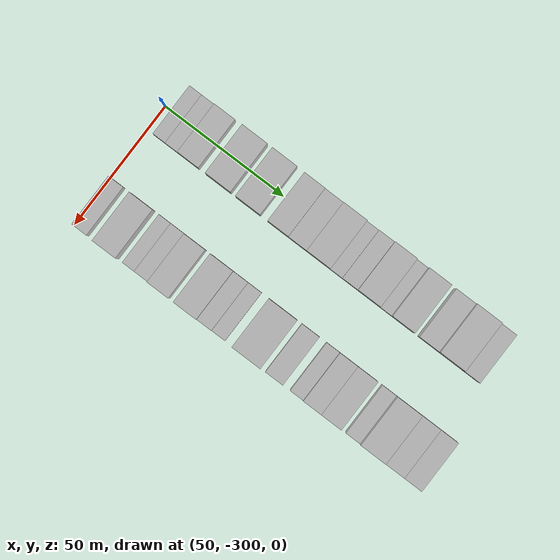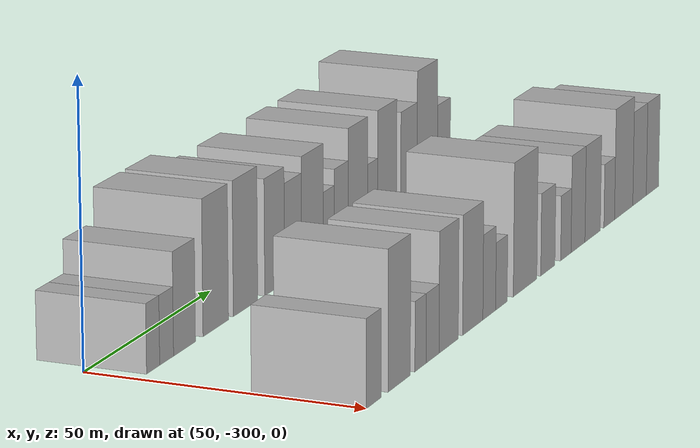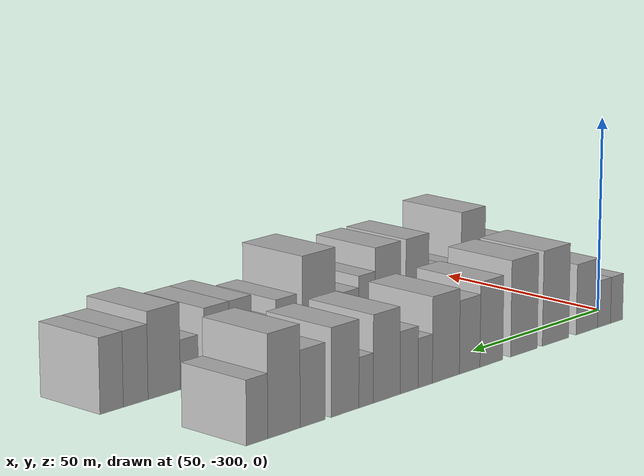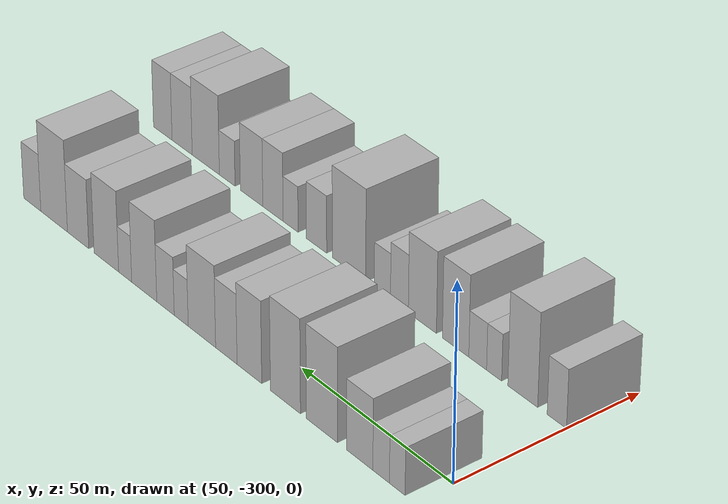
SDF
<sdf version="1.6">
 <world name="default">
  <model name="building_1">
   <static>1</static>
   <pose>50.0000 -294.4814 0 0.000000 0.000000 0.000000</pose>
   <link name="link">
    <pose>0 0 6.00 0 0 0</pose>
    <collision name="collision"><geometry><box><size>20.0000 5.0373 12.0000</size></box></geometry></collision>
    <visual name="visual">
     <cast_shadows>0</cast_shadows>
     <geometry><box><size>20.0000 5.0373 12.0000</size></box></geometry>
     <material>
      <script>
       <uri>model://HANNAS_wall/materials/scripts</uri>
       <uri>model://HANNAS_wall/materials/textures</uri>
       <name>vrc/HANNAS_wall</name>
      </script>
     </material>
    </visual>
   </link>
  </model>
  <model name="building_2">
   <static>1</static>
   <pose>50.0000 -289.2743 0 0.000000 0.000000 0.000000</pose>
   <link name="link">
    <pose>0 0 6.00 0 0 0</pose>
    <collision name="collision"><geometry><box><size>20.0000 5.3769 12.0000</size></box></geometry></collision>
    <visual name="visual">
     <cast_shadows>0</cast_shadows>
     <geometry><box><size>20.0000 5.3769 12.0000</size></box></geometry>
     <material>
      <script>
       <uri>model://HANNAS_wall/materials/scripts</uri>
       <uri>model://HANNAS_wall/materials/textures</uri>
       <name>vrc/HANNAS_wall</name>
      </script>
     </material>
    </visual>
   </link>
  </model>
  <model name="building_3">
   <static>1</static>
   <pose>50.0000 -282.2469 0 0.000000 0.000000 0.000000</pose>
   <link name="link">
    <pose>0 0 9.00 0 0 0</pose>
    <collision name="collision"><geometry><box><size>20.0000 8.6779 18.0000</size></box></geometry></collision>
    <visual name="visual">
     <cast_shadows>0</cast_shadows>
     <geometry><box><size>20.0000 8.6779 18.0000</size></box></geometry>
     <material>
      <script>
       <uri>model://HANNAS_wall/materials/scripts</uri>
       <uri>model://HANNAS_wall/materials/textures</uri>
       <name>vrc/HANNAS_wall</name>
      </script>
     </material>
    </visual>
   </link>
  </model>
  <model name="building_4">
   <static>1</static>
   <pose>50.0000 -269.6992 0 0.000000 0.000000 0.000000</pose>
   <link name="link">
    <pose>0 0 12.00 0 0 0</pose>
    <collision name="collision"><geometry><box><size>20.0000 10.4175 24.0000</size></box></geometry></collision>
    <visual name="visual">
     <cast_shadows>0</cast_shadows>
     <geometry><box><size>20.0000 10.4175 24.0000</size></box></geometry>
     <material>
      <script>
       <uri>model://HANNAS_wall/materials/scripts</uri>
       <uri>model://HANNAS_wall/materials/textures</uri>
       <name>vrc/HANNAS_wall</name>
      </script>
     </material>
    </visual>
   </link>
  </model>
  <model name="building_5">
   <static>1</static>
   <pose>50.0000 -257.3596 0 0.000000 0.000000 0.000000</pose>
   <link name="link">
    <pose>0 0 12.00 0 0 0</pose>
    <collision name="collision"><geometry><box><size>20.0000 10.2619 24.0000</size></box></geometry></collision>
    <visual name="visual">
     <cast_shadows>0</cast_shadows>
     <geometry><box><size>20.0000 10.2619 24.0000</size></box></geometry>
     <material>
      <script>
       <uri>model://HANNAS_wall/materials/scripts</uri>
       <uri>model://HANNAS_wall/materials/textures</uri>
       <name>vrc/HANNAS_wall</name>
      </script>
     </material>
    </visual>
   </link>
  </model>
  <model name="building_6">
   <static>1</static>
   <pose>50.0000 -244.9306 0 0.000000 0.000000 0.000000</pose>
   <link name="link">
    <pose>0 0 10.50 0 0 0</pose>
    <collision name="collision"><geometry><box><size>20.0000 8.5960 21.0000</size></box></geometry></collision>
    <visual name="visual">
     <cast_shadows>0</cast_shadows>
     <geometry><box><size>20.0000 8.5960 21.0000</size></box></geometry>
     <material>
      <script>
       <uri>model://HANNAS_wall/materials/scripts</uri>
       <uri>model://HANNAS_wall/materials/textures</uri>
       <name>vrc/HANNAS_wall</name>
      </script>
     </material>
    </visual>
   </link>
  </model>
  <model name="building_7">
   <static>1</static>
   <pose>50.0000 -236.8442 0 0.000000 0.000000 0.000000</pose>
   <link name="link">
    <pose>0 0 9.00 0 0 0</pose>
    <collision name="collision"><geometry><box><size>20.0000 7.5769 18.0000</size></box></geometry></collision>
    <visual name="visual">
     <cast_shadows>0</cast_shadows>
     <geometry><box><size>20.0000 7.5769 18.0000</size></box></geometry>
     <material>
      <script>
       <uri>model://HANNAS_wall/materials/scripts</uri>
       <uri>model://HANNAS_wall/materials/textures</uri>
       <name>vrc/HANNAS_wall</name>
      </script>
     </material>
    </visual>
   </link>
  </model>
  <model name="building_8">
   <static>1</static>
   <pose>50.0000 -228.1408 0 0.000000 0.000000 0.000000</pose>
   <link name="link">
    <pose>0 0 10.50 0 0 0</pose>
    <collision name="collision"><geometry><box><size>20.0000 9.8300 21.0000</size></box></geometry></collision>
    <visual name="visual">
     <cast_shadows>0</cast_shadows>
     <geometry><box><size>20.0000 9.8300 21.0000</size></box></geometry>
     <material>
      <script>
       <uri>model://HANNAS_wall/materials/scripts</uri>
       <uri>model://HANNAS_wall/materials/textures</uri>
       <name>vrc/HANNAS_wall</name>
      </script>
     </material>
    </visual>
   </link>
  </model>
  <model name="building_9">
   <static>1</static>
   <pose>50.0000 -220.6946 0 0.000000 0.000000 0.000000</pose>
   <link name="link">
    <pose>0 0 6.00 0 0 0</pose>
    <collision name="collision"><geometry><box><size>20.0000 5.0625 12.0000</size></box></geometry></collision>
    <visual name="visual">
     <cast_shadows>0</cast_shadows>
     <geometry><box><size>20.0000 5.0625 12.0000</size></box></geometry>
     <material>
      <script>
       <uri>model://HANNAS_wall/materials/scripts</uri>
       <uri>model://HANNAS_wall/materials/textures</uri>
       <name>vrc/HANNAS_wall</name>
      </script>
     </material>
    </visual>
   </link>
  </model>
  <model name="building_10">
   <static>1</static>
   <pose>50.0000 -214.9720 0 0.000000 0.000000 0.000000</pose>
   <link name="link">
    <pose>0 0 7.50 0 0 0</pose>
    <collision name="collision"><geometry><box><size>20.0000 6.3826 15.0000</size></box></geometry></collision>
    <visual name="visual">
     <cast_shadows>0</cast_shadows>
     <geometry><box><size>20.0000 6.3826 15.0000</size></box></geometry>
     <material>
      <script>
       <uri>model://HANNAS_wall/materials/scripts</uri>
       <uri>model://HANNAS_wall/materials/textures</uri>
       <name>vrc/HANNAS_wall</name>
      </script>
     </material>
    </visual>
   </link>
  </model>
  <model name="building_11">
   <static>1</static>
   <pose>50.0000 -207.1445 0 0.000000 0.000000 0.000000</pose>
   <link name="link">
    <pose>0 0 10.50 0 0 0</pose>
    <collision name="collision"><geometry><box><size>20.0000 9.2723 21.0000</size></box></geometry></collision>
    <visual name="visual">
     <cast_shadows>0</cast_shadows>
     <geometry><box><size>20.0000 9.2723 21.0000</size></box></geometry>
     <material>
      <script>
       <uri>model://HANNAS_wall/materials/scripts</uri>
       <uri>model://HANNAS_wall/materials/textures</uri>
       <name>vrc/HANNAS_wall</name>
      </script>
     </material>
    </visual>
   </link>
  </model>
  <model name="building_12">
   <static>1</static>
   <pose>50.0000 -200.0656 0 0.000000 0.000000 0.000000</pose>
   <link name="link">
    <pose>0 0 6.00 0 0 0</pose>
    <collision name="collision"><geometry><box><size>20.0000 4.8856 12.0000</size></box></geometry></collision>
    <visual name="visual">
     <cast_shadows>0</cast_shadows>
     <geometry><box><size>20.0000 4.8856 12.0000</size></box></geometry>
     <material>
      <script>
       <uri>model://HANNAS_wall/materials/scripts</uri>
       <uri>model://HANNAS_wall/materials/textures</uri>
       <name>vrc/HANNAS_wall</name>
      </script>
     </material>
    </visual>
   </link>
  </model>
  <model name="building_13">
   <static>1</static>
   <pose>50.0000 -192.9678 0 0.000000 0.000000 0.000000</pose>
   <link name="link">
    <pose>0 0 10.50 0 0 0</pose>
    <collision name="collision"><geometry><box><size>20.0000 9.3100 21.0000</size></box></geometry></collision>
    <visual name="visual">
     <cast_shadows>0</cast_shadows>
     <geometry><box><size>20.0000 9.3100 21.0000</size></box></geometry>
     <material>
      <script>
       <uri>model://HANNAS_wall/materials/scripts</uri>
       <uri>model://HANNAS_wall/materials/textures</uri>
       <name>vrc/HANNAS_wall</name>
      </script>
     </material>
    </visual>
   </link>
  </model>
  <model name="building_14">
   <static>1</static>
   <pose>50.0000 -182.2153 0 0.000000 0.000000 0.000000</pose>
   <link name="link">
    <pose>0 0 9.00 0 0 0</pose>
    <collision name="collision"><geometry><box><size>20.0000 8.1949 18.0000</size></box></geometry></collision>
    <visual name="visual">
     <cast_shadows>0</cast_shadows>
     <geometry><box><size>20.0000 8.1949 18.0000</size></box></geometry>
     <material>
      <script>
       <uri>model://HANNAS_wall/materials/scripts</uri>
       <uri>model://HANNAS_wall/materials/textures</uri>
       <name>vrc/HANNAS_wall</name>
      </script>
     </material>
    </visual>
   </link>
  </model>
  <model name="building_15">
   <static>1</static>
   <pose>50.0000 -172.9326 0 0.000000 0.000000 0.000000</pose>
   <link name="link">
    <pose>0 0 12.00 0 0 0</pose>
    <collision name="collision"><geometry><box><size>20.0000 10.3706 24.0000</size></box></geometry></collision>
    <visual name="visual">
     <cast_shadows>0</cast_shadows>
     <geometry><box><size>20.0000 10.3706 24.0000</size></box></geometry>
     <material>
      <script>
       <uri>model://HANNAS_wall/materials/scripts</uri>
       <uri>model://HANNAS_wall/materials/textures</uri>
       <name>vrc/HANNAS_wall</name>
      </script>
     </material>
    </visual>
   </link>
  </model>
  <model name="building_16">
   <static>1</static>
   <pose>50.0000 -164.3762 0 0.000000 0.000000 0.000000</pose>
   <link name="link">
    <pose>0 0 7.50 0 0 0</pose>
    <collision name="collision"><geometry><box><size>20.0000 6.7421 15.0000</size></box></geometry></collision>
    <visual name="visual">
     <cast_shadows>0</cast_shadows>
     <geometry><box><size>20.0000 6.7421 15.0000</size></box></geometry>
     <material>
      <script>
       <uri>model://HANNAS_wall/materials/scripts</uri>
       <uri>model://HANNAS_wall/materials/textures</uri>
       <name>vrc/HANNAS_wall</name>
      </script>
     </material>
    </visual>
   </link>
  </model>
  <model name="building_68">
   <static>1</static>
   <pose>90.0000 -296.9285 0 0.000000 0.000000 0.000000</pose>
   <link name="link">
    <pose>0 0 7.50 0 0 0</pose>
    <collision name="collision"><geometry><box><size>20.0000 6.1430 15.0000</size></box></geometry></collision>
    <visual name="visual">
     <cast_shadows>0</cast_shadows>
     <geometry><box><size>20.0000 6.1430 15.0000</size></box></geometry>
     <material>
      <script>
       <uri>model://HANNAS_wall/materials/scripts</uri>
       <uri>model://HANNAS_wall/materials/textures</uri>
       <name>vrc/HANNAS_wall</name>
      </script>
     </material>
    </visual>
   </link>
  </model>
  <model name="building_69">
   <static>1</static>
   <pose>90.0000 -286.0475 0 0.000000 0.000000 0.000000</pose>
   <link name="link">
    <pose>0 0 12.00 0 0 0</pose>
    <collision name="collision"><geometry><box><size>20.0000 9.6191 24.0000</size></box></geometry></collision>
    <visual name="visual">
     <cast_shadows>0</cast_shadows>
     <geometry><box><size>20.0000 9.6191 24.0000</size></box></geometry>
     <material>
      <script>
       <uri>model://HANNAS_wall/materials/scripts</uri>
       <uri>model://HANNAS_wall/materials/textures</uri>
       <name>vrc/HANNAS_wall</name>
      </script>
     </material>
    </visual>
   </link>
  </model>
  <model name="building_70">
   <static>1</static>
   <pose>90.0000 -276.7763 0 0.000000 0.000000 0.000000</pose>
   <link name="link">
    <pose>0 0 6.00 0 0 0</pose>
    <collision name="collision"><geometry><box><size>20.0000 4.9232 12.0000</size></box></geometry></collision>
    <visual name="visual">
     <cast_shadows>0</cast_shadows>
     <geometry><box><size>20.0000 4.9232 12.0000</size></box></geometry>
     <material>
      <script>
       <uri>model://HANNAS_wall/materials/scripts</uri>
       <uri>model://HANNAS_wall/materials/textures</uri>
       <name>vrc/HANNAS_wall</name>
      </script>
     </material>
    </visual>
   </link>
  </model>
  <model name="building_71">
   <static>1</static>
   <pose>90.0000 -271.3914 0 0.000000 0.000000 0.000000</pose>
   <link name="link">
    <pose>0 0 6.00 0 0 0</pose>
    <collision name="collision"><geometry><box><size>20.0000 5.8466 12.0000</size></box></geometry></collision>
    <visual name="visual">
     <cast_shadows>0</cast_shadows>
     <geometry><box><size>20.0000 5.8466 12.0000</size></box></geometry>
     <material>
      <script>
       <uri>model://HANNAS_wall/materials/scripts</uri>
       <uri>model://HANNAS_wall/materials/textures</uri>
       <name>vrc/HANNAS_wall</name>
      </script>
     </material>
    </visual>
   </link>
  </model>
  <model name="building_72">
   <static>1</static>
   <pose>90.0000 -264.0654 0 0.000000 0.000000 0.000000</pose>
   <link name="link">
    <pose>0 0 10.50 0 0 0</pose>
    <collision name="collision"><geometry><box><size>20.0000 8.8055 21.0000</size></box></geometry></collision>
    <visual name="visual">
     <cast_shadows>0</cast_shadows>
     <geometry><box><size>20.0000 8.8055 21.0000</size></box></geometry>
     <material>
      <script>
       <uri>model://HANNAS_wall/materials/scripts</uri>
       <uri>model://HANNAS_wall/materials/textures</uri>
       <name>vrc/HANNAS_wall</name>
      </script>
     </material>
    </visual>
   </link>
  </model>
  <model name="building_73">
   <static>1</static>
   <pose>90.0000 -252.9008 0 0.000000 0.000000 0.000000</pose>
   <link name="link">
    <pose>0 0 10.50 0 0 0</pose>
    <collision name="collision"><geometry><box><size>20.0000 9.5235 21.0000</size></box></geometry></collision>
    <visual name="visual">
     <cast_shadows>0</cast_shadows>
     <geometry><box><size>20.0000 9.5235 21.0000</size></box></geometry>
     <material>
      <script>
       <uri>model://HANNAS_wall/materials/scripts</uri>
       <uri>model://HANNAS_wall/materials/textures</uri>
       <name>vrc/HANNAS_wall</name>
      </script>
     </material>
    </visual>
   </link>
  </model>
  <model name="building_74">
   <static>1</static>
   <pose>90.0000 -245.0820 0 0.000000 0.000000 0.000000</pose>
   <link name="link">
    <pose>0 0 7.50 0 0 0</pose>
    <collision name="collision"><geometry><box><size>20.0000 6.1141 15.0000</size></box></geometry></collision>
    <visual name="visual">
     <cast_shadows>0</cast_shadows>
     <geometry><box><size>20.0000 6.1141 15.0000</size></box></geometry>
     <material>
      <script>
       <uri>model://HANNAS_wall/materials/scripts</uri>
       <uri>model://HANNAS_wall/materials/textures</uri>
       <name>vrc/HANNAS_wall</name>
      </script>
     </material>
    </visual>
   </link>
  </model>
  <model name="building_75">
   <static>1</static>
   <pose>90.0000 -239.2229 0 0.000000 0.000000 0.000000</pose>
   <link name="link">
    <pose>0 0 6.00 0 0 0</pose>
    <collision name="collision"><geometry><box><size>20.0000 5.6043 12.0000</size></box></geometry></collision>
    <visual name="visual">
     <cast_shadows>0</cast_shadows>
     <geometry><box><size>20.0000 5.6043 12.0000</size></box></geometry>
     <material>
      <script>
       <uri>model://HANNAS_wall/materials/scripts</uri>
       <uri>model://HANNAS_wall/materials/textures</uri>
       <name>vrc/HANNAS_wall</name>
      </script>
     </material>
    </visual>
   </link>
  </model>
  <model name="building_76">
   <static>1</static>
   <pose>90.0000 -227.5243 0 0.000000 0.000000 0.000000</pose>
   <link name="link">
    <pose>0 0 12.00 0 0 0</pose>
    <collision name="collision"><geometry><box><size>20.0000 11.7929 24.0000</size></box></geometry></collision>
    <visual name="visual">
     <cast_shadows>0</cast_shadows>
     <geometry><box><size>20.0000 11.7929 24.0000</size></box></geometry>
     <material>
      <script>
       <uri>model://HANNAS_wall/materials/scripts</uri>
       <uri>model://HANNAS_wall/materials/textures</uri>
       <name>vrc/HANNAS_wall</name>
      </script>
     </material>
    </visual>
   </link>
  </model>
  <model name="building_77">
   <static>1</static>
   <pose>90.0000 -215.9899 0 0.000000 0.000000 0.000000</pose>
   <link name="link">
    <pose>0 0 7.50 0 0 0</pose>
    <collision name="collision"><geometry><box><size>20.0000 7.2759 15.0000</size></box></geometry></collision>
    <visual name="visual">
     <cast_shadows>0</cast_shadows>
     <geometry><box><size>20.0000 7.2759 15.0000</size></box></geometry>
     <material>
      <script>
       <uri>model://HANNAS_wall/materials/scripts</uri>
       <uri>model://HANNAS_wall/materials/textures</uri>
       <name>vrc/HANNAS_wall</name>
      </script>
     </material>
    </visual>
   </link>
  </model>
  <model name="building_78">
   <static>1</static>
   <pose>90.0000 -206.6323 0 0.000000 0.000000 0.000000</pose>
   <link name="link">
    <pose>0 0 6.00 0 0 0</pose>
    <collision name="collision"><geometry><box><size>20.0000 5.4393 12.0000</size></box></geometry></collision>
    <visual name="visual">
     <cast_shadows>0</cast_shadows>
     <geometry><box><size>20.0000 5.4393 12.0000</size></box></geometry>
     <material>
      <script>
       <uri>model://HANNAS_wall/materials/scripts</uri>
       <uri>model://HANNAS_wall/materials/textures</uri>
       <name>vrc/HANNAS_wall</name>
      </script>
     </material>
    </visual>
   </link>
  </model>
  <model name="building_79">
   <static>1</static>
   <pose>90.0000 -200.1894 0 0.000000 0.000000 0.000000</pose>
   <link name="link">
    <pose>0 0 9.00 0 0 0</pose>
    <collision name="collision"><geometry><box><size>20.0000 7.4466 18.0000</size></box></geometry></collision>
    <visual name="visual">
     <cast_shadows>0</cast_shadows>
     <geometry><box><size>20.0000 7.4466 18.0000</size></box></geometry>
     <material>
      <script>
       <uri>model://HANNAS_wall/materials/scripts</uri>
       <uri>model://HANNAS_wall/materials/textures</uri>
       <name>vrc/HANNAS_wall</name>
      </script>
     </material>
    </visual>
   </link>
  </model>
  <model name="building_80">
   <static>1</static>
   <pose>90.0000 -192.2884 0 0.000000 0.000000 0.000000</pose>
   <link name="link">
    <pose>0 0 9.00 0 0 0</pose>
    <collision name="collision"><geometry><box><size>20.0000 8.3553 18.0000</size></box></geometry></collision>
    <visual name="visual">
     <cast_shadows>0</cast_shadows>
     <geometry><box><size>20.0000 8.3553 18.0000</size></box></geometry>
     <material>
      <script>
       <uri>model://HANNAS_wall/materials/scripts</uri>
       <uri>model://HANNAS_wall/materials/textures</uri>
       <name>vrc/HANNAS_wall</name>
      </script>
     </material>
    </visual>
   </link>
  </model>
  <model name="building_81">
   <static>1</static>
   <pose>90.0000 -183.1633 0 0.000000 0.000000 0.000000</pose>
   <link name="link">
    <pose>0 0 6.00 0 0 0</pose>
    <collision name="collision"><geometry><box><size>20.0000 5.8948 12.0000</size></box></geometry></collision>
    <visual name="visual">
     <cast_shadows>0</cast_shadows>
     <geometry><box><size>20.0000 5.8948 12.0000</size></box></geometry>
     <material>
      <script>
       <uri>model://HANNAS_wall/materials/scripts</uri>
       <uri>model://HANNAS_wall/materials/textures</uri>
       <name>vrc/HANNAS_wall</name>
      </script>
     </material>
    </visual>
   </link>
  </model>
  <model name="building_82">
   <static>1</static>
   <pose>90.0000 -175.0338 0 0.000000 0.000000 0.000000</pose>
   <link name="link">
    <pose>0 0 10.50 0 0 0</pose>
    <collision name="collision"><geometry><box><size>20.0000 10.3643 21.0000</size></box></geometry></collision>
    <visual name="visual">
     <cast_shadows>0</cast_shadows>
     <geometry><box><size>20.0000 10.3643 21.0000</size></box></geometry>
     <material>
      <script>
       <uri>model://HANNAS_wall/materials/scripts</uri>
       <uri>model://HANNAS_wall/materials/textures</uri>
       <name>vrc/HANNAS_wall</name>
      </script>
     </material>
    </visual>
   </link>
  </model>
  <model name="building_83">
   <static>1</static>
   <pose>90.0000 -165.9601 0 0.000000 0.000000 0.000000</pose>
   <link name="link">
    <pose>0 0 9.00 0 0 0</pose>
    <collision name="collision"><geometry><box><size>20.0000 7.7831 18.0000</size></box></geometry></collision>
    <visual name="visual">
     <cast_shadows>0</cast_shadows>
     <geometry><box><size>20.0000 7.7831 18.0000</size></box></geometry>
     <material>
      <script>
       <uri>model://HANNAS_wall/materials/scripts</uri>
       <uri>model://HANNAS_wall/materials/textures</uri>
       <name>vrc/HANNAS_wall</name>
      </script>
     </material>
    </visual>
   </link>
  </model>
  <model name="building_84">
   <static>1</static>
   <pose>90.0000 -158.4560 0 0.000000 0.000000 0.000000</pose>
   <link name="link">
    <pose>0 0 9.00 0 0 0</pose>
    <collision name="collision"><geometry><box><size>20.0000 7.2252 18.0000</size></box></geometry></collision>
    <visual name="visual">
     <cast_shadows>0</cast_shadows>
     <geometry><box><size>20.0000 7.2252 18.0000</size></box></geometry>
     <material>
      <script>
       <uri>model://HANNAS_wall/materials/scripts</uri>
       <uri>model://HANNAS_wall/materials/textures</uri>
       <name>vrc/HANNAS_wall</name>
      </script>
     </material>
    </visual>
   </link>
  </model>
 </world>
</sdf>
